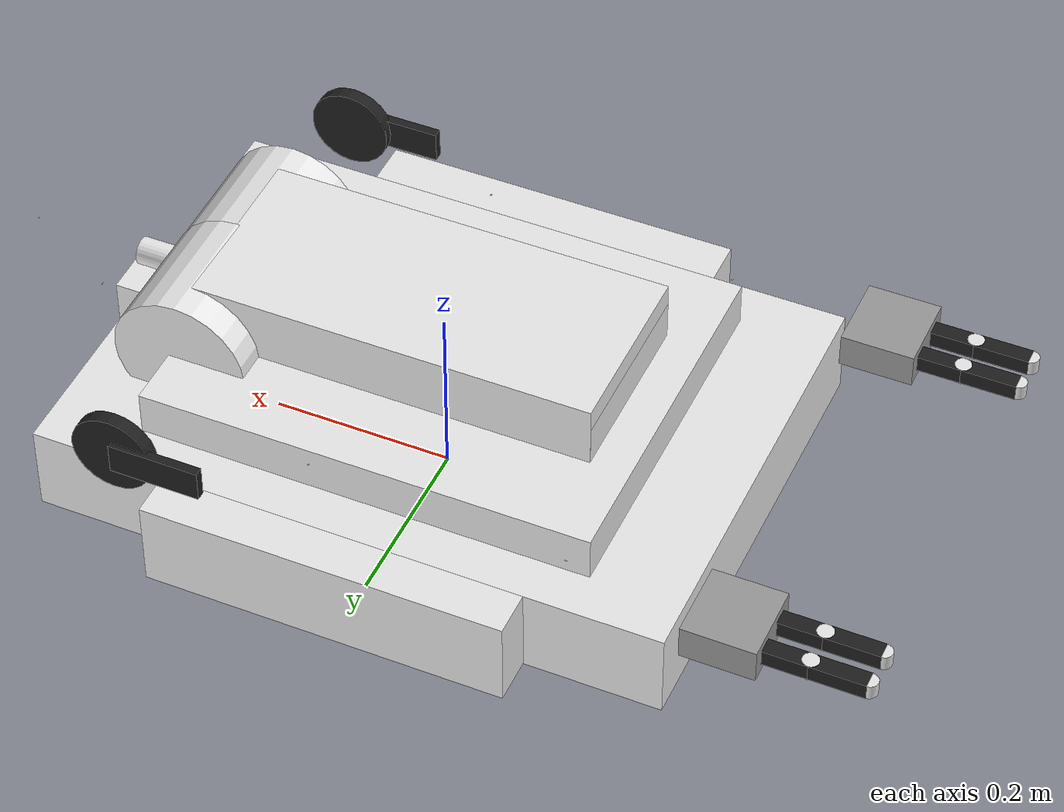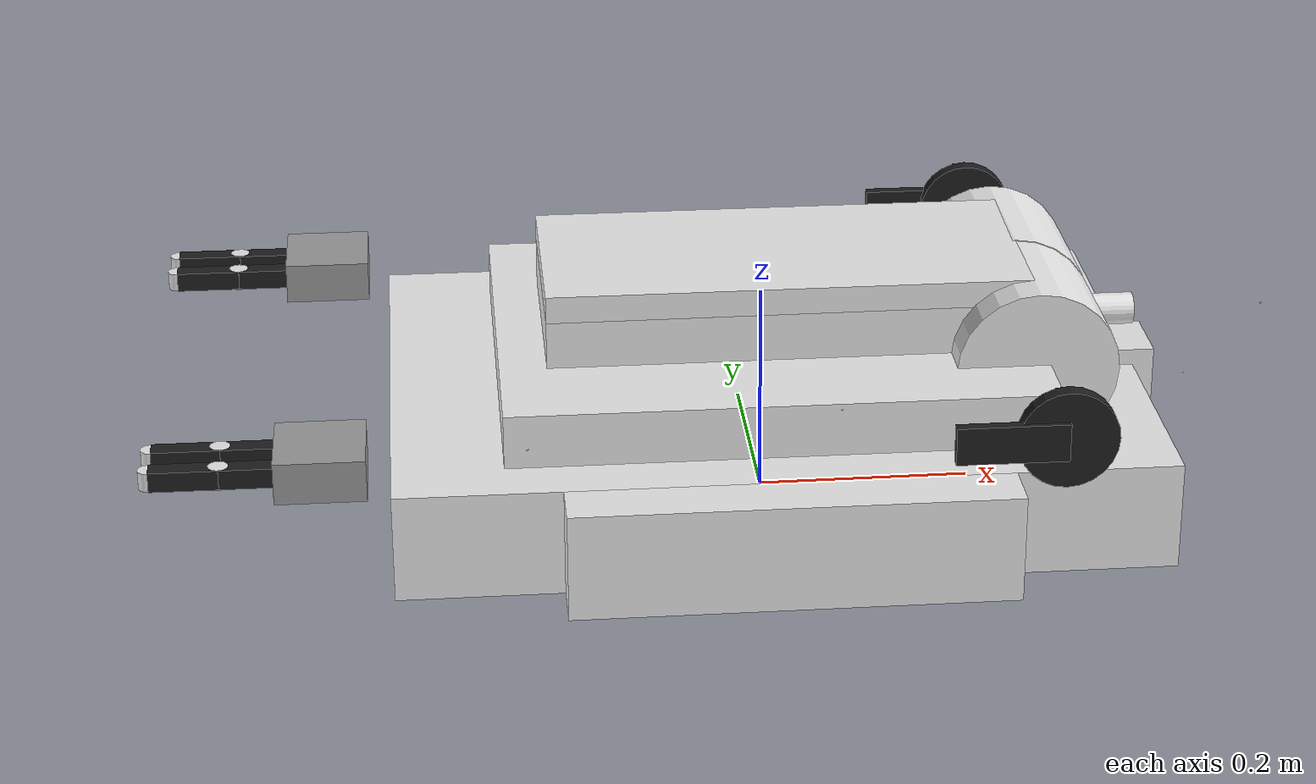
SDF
<sdf version="1.4">
 <model name="amigo">
  <link name="base_link">
   <inertial>
    <pose>0.196154 3.81258e-18 0.0496154 0 -0 0</pose>
    <mass>0.91</mass>
    <inertia>
     <ixx>0.0211371</ixx>
     <ixy>6.80545e-19</ixy>
     <ixz>0.00617885</ixz>
     <iyy>0.0334737</iyy>
     <iyz>-8.80706e-20</iyz>
     <izz>0.0467865</izz>
    </inertia>
   </inertial>
   <collision name="base_link_collision">
    <geometry><cylinder><length>0</length><radius>0</radius></cylinder></geometry>
   </collision>
   <collision name="base_link_collision_base">
    <pose>0 0 0.075 0 -0 0</pose>
    <geometry><box><size>0.7 0.5 0.1</size></box></geometry>
   </collision>
   <collision name="base_link_collision_base_laser">
    <pose>0.345 0.000103522 0.0799999 3.14 -0 0</pose>
    <geometry><box><size>0.05 0.065 0.12</size></box></geometry>
   </collision>
   <collision name="base_link_collision_base_torso_mount">
    <pose>0 0 0.125 0 -0 0</pose>
    <geometry><cylinder><length>0</length><radius>0</radius></cylinder></geometry>
   </collision>
   <collision name="base_link_collision_lasertop">
    <pose>0.345 0 0.015 3.14 -0 0</pose>
    <geometry><box><size>0.05 0.065 0.01</size></box></geometry>
   </collision>
   <collision name="base_link_collision_sidepot_left">
    <pose>0 0.275 0.075 0 -0 0</pose>
    <geometry><box><size>0.4 0.05 0.1</size></box></geometry>
   </collision>
   <collision name="base_link_collision_sidepot_right">
    <pose>0 -0.275 0.075 0 -0 0</pose>
    <geometry><box><size>0.4 0.05 0.1</size></box></geometry>
   </collision>
   <collision name="base_link_collision_torso_mounting_frame">
    <pose>0 0 0.15 0 -0 0</pose>
    <geometry><box><size>0.5 0.4 0.05</size></box></geometry>
   </collision>
   <visual name="base_link_visual">
    <geometry><cylinder><length>0</length><radius>0</radius></cylinder></geometry>
    <material><script><name>Gazebo/White</name><uri>__default__</uri></script></material>
    <material><script><name>Gazebo/White</name><uri>__default__</uri></script></material>
   </visual>
   <visual name="base_link_visual_base">
    <pose>0 0 0.075 0 -0 0</pose>
    <geometry><box><size>0.7 0.5 0.1</size></box></geometry>
    <material><script><name>Gazebo/White</name><uri>__default__</uri></script></material>
   </visual>
   <visual name="base_link_visual_base_laser">
    <pose>0.345 0.000103522 0.0799999 3.14 -0 0</pose>
    <geometry><box><size>0.05 0.065 0.12</size></box></geometry>
    <material><script><name>Gazebo/White</name><uri>__default__</uri></script></material>
    <material><script><name>Gazebo/Black</name><uri>__default__</uri></script></material>
   </visual>
   <visual name="base_link_visual_base_torso_mount">
    <pose>0 0 0.125 0 -0 0</pose>
    <geometry><cylinder><length>0</length><radius>0</radius></cylinder></geometry>
    <material><script><name>Gazebo/White</name><uri>__default__</uri></script></material>
    <material><script><name>Gazebo/White</name><uri>__default__</uri></script></material>
   </visual>
   <visual name="base_link_visual_lasertop">
    <pose>0.345 0 0.015 3.14 -0 0</pose>
    <geometry><box><size>0.05 0.065 0.01</size></box></geometry>
    <material><script><name>Gazebo/Red</name><uri>__default__</uri></script></material>
   </visual>
   <visual name="base_link_visual_sidepot_left">
    <pose>0 0.275 0.075 0 -0 0</pose>
    <geometry><box><size>0.4 0.05 0.1</size></box></geometry>
    <material><script><name>Gazebo/White</name><uri>__default__</uri></script></material>
   </visual>
   <visual name="base_link_visual_sidepot_right">
    <pose>0 -0.275 0.075 0 -0 0</pose>
    <geometry><box><size>0.4 0.05 0.1</size></box></geometry>
    <material><script><name>Gazebo/White</name><uri>__default__</uri></script></material>
   </visual>
   <visual name="base_link_visual_torso_mounting_frame">
    <pose>0 0 0.15 0 -0 0</pose>
    <geometry><box><size>0.5 0.4 0.05</size></box></geometry>
    <material><script><name>Gazebo/White</name><uri>__default__</uri></script></material>
   </visual>
   <velocity_decay><linear>0</linear><angular>0</angular></velocity_decay>
   <velocity_decay><linear>0</linear><angular>0</angular></velocity_decay>
   <sensor name="base_kinect_openni_camera" type="depth">
    <update_rate>20</update_rate>
    <camera name="base_kinect">
     <horizontal_fov>1.0472</horizontal_fov>
     <image><width>640</width><height>480</height><format>R8G8B8</format></image>
     <clip><near>0.05</near><far>3</far></clip>
    </camera>
    <plugin name="base_kinect_camera_controller" filename="libKinectPlugin.so">
     <alwaysOn>1</alwaysOn>
     <updateRate>20</updateRate>
     <cameraName>base_kinect</cameraName>
     <imageTopicName>rgb/image_color</imageTopicName>
     <cameraInfoTopicName>rgb/camera_info</cameraInfoTopicName>
     <depthImageTopicName>depth/image</depthImageTopicName>
     <depthImageCameraInfoTopicName>depth/camera_info</depthImageCameraInfoTopicName>
     <pointCloudTopicName>rgb/points</pointCloudTopicName>
     <frameName>base_kinect/openni_depth_optical_frame</frameName>
    </plugin>
    <pose>0.3 0 0.315 0 -0.07 0</pose>
   </sensor>
   <sensor name="base_ray_sensor" type="ray">
    <update_rate>100</update_rate>
    <ray>
     <scan>
      <horizontal>
       <samples>918</samples>
       <resolution>1</resolution>
       <min_angle>-2.00277</min_angle>
       <max_angle>1.9984</max_angle>
      </horizontal>
      <vertical><samples>1</samples><min_angle>0</min_angle><max_angle>0</max_angle></vertical>
     </scan>
     <range><min>0.05</min><max>60</max><resolution>0.01</resolution></range>
    </ray>
    <plugin name="base_ros_ray_sensor_controller" filename="libLaserPlugin.so">
     <gaussianNoise>0.005</gaussianNoise>
     <alwaysOn>1</alwaysOn>
     <updateRate>40</updateRate>
     <topicName>base_front_laser</topicName>
     <node_namespace>base</node_namespace>
     <frameName>base_laser</frameName>
    </plugin>
    <pose>0.31 0 0.24 3.14 -0 0</pose>
   </sensor>
   <velocity_decay><linear>0</linear><angular>0</angular></velocity_decay>
   <velocity_decay><linear>0</linear><angular>0</angular></velocity_decay>
   <velocity_decay><linear>0</linear><angular>0</angular></velocity_decay>
   <velocity_decay><linear>0</linear><angular>0</angular></velocity_decay>
   <velocity_decay><linear>0</linear><angular>0</angular></velocity_decay>
   <velocity_decay><linear>0</linear><angular>0</angular></velocity_decay>
   <velocity_decay><linear>0</linear><angular>0</angular></velocity_decay>
  </link>
  <link name="lower_rear_leg">
   <pose>-0.185 0 0.17 0 -0 0</pose>
   <inertial>
    <pose>0.195 0 0 0 -0 0</pose>
    <mass>5</mass>
    <inertia><ixx>0.001</ixx><ixy>0</ixy><ixz>0</ixz><iyy>0.001</iyy><iyz>0</iyz><izz>0.001</izz></inertia>
   </inertial>
   <collision name="lower_rear_leg_collision">
    <pose>0.195 0 0 0 -0 0</pose>
    <geometry><box><size>0.39 0.2 0.05</size></box></geometry>
   </collision>
   <visual name="lower_rear_leg_visual">
    <pose>0.195 0 0 0 -0 0</pose>
    <geometry><box><size>0.39 0.2 0.05</size></box></geometry>
    <material><script><name>Gazebo/White</name><uri>__default__</uri></script></material>
   </visual>
   <velocity_decay><linear>0</linear><angular>0</angular></velocity_decay>
  </link>
  <joint name="ankle_joint" type="revolute">
   <child>lower_rear_leg</child>
   <parent>base_link</parent>
   <axis>
    <xyz>0 -1 0</xyz>
    <limit><lower>0.87</lower><upper>0.87</upper><effort>1000</effort><velocity>10</velocity></limit>
    <dynamics><damping>6</damping></dynamics>
   </axis>
  </joint>
  <link name="upper_leg">
   <pose>0.205 0 0.17 -0.00159265 0.00159265 3.14159</pose>
   <inertial>
    <pose>0.20575 0 0 0 -0 0</pose>
    <mass>5</mass>
    <inertia><ixx>0.001</ixx><ixy>0</ixy><ixz>0</ixz><iyy>0.001</iyy><iyz>0</iyz><izz>0.001</izz></inertia>
   </inertial>
   <collision name="upper_leg_collision">
    <pose>0.20575 0 0 0 -0 0</pose>
    <geometry><box><size>0.4115 0.2 0.1</size></box></geometry>
   </collision>
   <visual name="upper_leg_visual">
    <pose>0.20575 0 0 0 -0 0</pose>
    <geometry><box><size>0.4115 0.2 0.1</size></box></geometry>
    <material><script><name>Gazebo/White</name><uri>__default__</uri></script></material>
   </visual>
   <velocity_decay><linear>0</linear><angular>0</angular></velocity_decay>
  </link>
  <joint name="knee_joint" type="revolute">
   <child>upper_leg</child>
   <parent>lower_rear_leg</parent>
   <axis>
    <xyz>-2.53654e-06 0.999999 0.00159265</xyz>
    <limit><lower>2</lower><upper>2</upper><effort>1000</effort><velocity>10</velocity></limit>
    <dynamics><damping>6</damping></dynamics>
   </axis>
  </joint>
  <link name="trunk">
   <pose>-0.206499 -5.29396e-23 0.169345 -2.01992e-09 -2.01992e-09 2.53654e-06</pose>
   <inertial>
    <pose>0.229007 0 0 0 -0 0</pose>
    <mass>10.301</mass>
    <inertia>
     <ixx>0.0223675</ixx>
     <ixy>0</ixy>
     <ixz>0</ixz>
     <iyy>0.0355928</iyy>
     <iyz>-4.81381e-06</iyz>
     <izz>0.0368602</izz>
    </inertia>
   </inertial>
   <collision name="trunk_collision">
    <pose>0.2225 0 0 0 -0 0</pose>
    <geometry><box><size>0.445 0.2 0.15</size></box></geometry>
   </collision>
   <collision name="trunk_collision_shoulder_mount_left">
    <pose>0.445 0.0650002 0.000246861 -1.57319 -0 0</pose>
    <geometry><cylinder><length>0.14</length><radius>0.075</radius></cylinder></geometry>
   </collision>
   <collision name="trunk_collision_shoulder_mount_right">
    <pose>0.445 -0.0650002 -0.000246861 -1.57319 -0 0</pose>
    <geometry><cylinder><length>0.14</length><radius>0.075</radius></cylinder></geometry>
   </collision>
   <visual name="trunk_visual">
    <pose>0.2225 0 0 0 -0 0</pose>
    <geometry><box><size>0.445 0.2 0.15</size></box></geometry>
    <material><script><name>Gazebo/White</name><uri>__default__</uri></script></material>
   </visual>
   <visual name="trunk_visual_shoulder_mount_left">
    <pose>0.445 0.0650002 0.000246861 -1.57319 -0 0</pose>
    <geometry><cylinder><length>0.14</length><radius>0.075</radius></cylinder></geometry>
    <material><script><name>Gazebo/White</name><uri>__default__</uri></script></material>
   </visual>
   <visual name="trunk_visual_shoulder_mount_right">
    <pose>0.445 -0.0650002 -0.000246861 -1.57319 -0 0</pose>
    <geometry><cylinder><length>0.14</length><radius>0.075</radius></cylinder></geometry>
    <material><script><name>Gazebo/White</name><uri>__default__</uri></script></material>
   </visual>
   <velocity_decay><linear>0</linear><angular>0</angular></velocity_decay>
   <velocity_decay><linear>0</linear><angular>0</angular></velocity_decay>
   <velocity_decay><linear>0</linear><angular>0</angular></velocity_decay>
  </link>
  <joint name="hip_joint" type="revolute">
   <child>trunk</child>
   <parent>upper_leg</parent>
   <axis>
    <xyz>2.53654e-06 -1 2.01992e-09</xyz>
    <limit><lower>2.36</lower><upper>2.36</upper><effort>1000</effort><velocity>10</velocity></limit>
    <dynamics><damping>6</damping></dynamics>
   </axis>
  </joint>
  <link name="neck_pan">
   <pose>0.293501 1.26827e-06 0.169345 -1.57469 1.5692 -1.5731</pose>
   <inertial>
    <pose>0 0 0.0335 0 -0 0</pose>
    <mass>0.05</mass>
    <inertia><ixx>0.0001</ixx><ixy>0</ixy><ixz>0</ixz><iyy>0.0001</iyy><iyz>0</iyz><izz>0.0001</izz></inertia>
   </inertial>
   <collision name="neck_pan_collision">
    <pose>0 0 0.0335 0 -0 0</pose>
    <geometry><cylinder><length>0.0525</length><radius>0.015</radius></cylinder></geometry>
   </collision>
   <visual name="neck_pan_visual">
    <pose>0 0 0.0335 0 -0 0</pose>
    <geometry><cylinder><length>0.0525</length><radius>0.015</radius></cylinder></geometry>
    <material><script><name>Gazebo/White</name><uri>__default__</uri></script></material>
   </visual>
   <velocity_decay><linear>0</linear><angular>0</angular></velocity_decay>
  </link>
  <joint name="neck_pan_joint" type="revolute">
   <child>neck_pan</child>
   <parent>trunk</parent>
   <axis>
    <xyz>0.999999 0.00159518 -6.20772e-06</xyz>
    <limit><lower>-1.5708</lower><upper>1.5708</upper><effort>13.4</effort><velocity>1</velocity></limit>
    <dynamics><damping>0.1</damping></dynamics>
   </axis>
  </joint>
  <link name="neck_tilt">
   <pose>0.338 7.22539e-05 0.169344 -1.57469 1.5692 -1.5731</pose>
   <inertial>
    <pose>0.0220548 0.00257534 0.0415753 0 -0 0</pose>
    <mass>0.073</mass>
    <inertia>
     <ixx>0.00333026</ixx>
     <ixy>-9.0137e-06</ixy>
     <ixz>-4.57637e-05</ixz>
     <iyy>0.00340432</iyy>
     <iyz>-5.34384e-06</iyz>
     <izz>0.00338032</izz>
    </inertia>
   </inertial>
   <collision name="neck_tilt_collision">
    <pose>0 -0 0.015 0 -0 0</pose>
    <geometry><box><size>0.001 0.001 0.001</size></box></geometry>
   </collision>
   <collision name="neck_tilt_collision_head">
    <pose>0 0 0.141 0 0 -1.5708</pose>
    <geometry><box><size>0.001 0.001 0.001</size></box></geometry>
   </collision>
   <visual name="neck_tilt_visual">
    <pose>0 -0 0.015 0 -0 0</pose>
    <geometry><box><size>0.001 0.001 0.001</size></box></geometry>
    <material><script><name>Gazebo/White</name><uri>__default__</uri></script></material>
   </visual>
   <visual name="neck_tilt_visual_head">
    <pose>0 0 0.141 0 0 -1.5708</pose>
    <geometry><box><size>0.001 0.001 0.001</size></box></geometry>
    <material><script><name>Gazebo/White</name><uri>__default__</uri></script></material>
   </visual>
   <visual name="neck_tilt_visual_top_kinect/openni_camera">
    <pose>0.07 0 0.07 0 -0 0</pose>
    <geometry><mesh><scale>1 1 1</scale><uri>model://media/meshes/kinect_without_base.dae</uri></mesh></geometry>
   </visual>
   <velocity_decay><linear>0</linear><angular>0</angular></velocity_decay>
   <velocity_decay><linear>0</linear><angular>0</angular></velocity_decay>
   <sensor name="openni_camera" type="depth">
    <update_rate>20</update_rate>
    <camera name="top_kinect">
     <horizontal_fov>1.0472</horizontal_fov>
     <image><width>640</width><height>480</height><format>R8G8B8</format></image>
     <clip><near>0.05</near><far>3</far></clip>
    </camera>
    <plugin name="kinect_camera_controller" filename="libKinectPlugin.so">
     <alwaysOn>1</alwaysOn>
     <updateRate>20</updateRate>
     <cameraName>top_kinect</cameraName>
     <imageTopicName>rgb/image_color</imageTopicName>
     <cameraInfoTopicName>rgb/camera_info</cameraInfoTopicName>
     <depthImageTopicName>depth/image</depthImageTopicName>
     <depthImageCameraInfoTopicName>depth/camera_info</depthImageCameraInfoTopicName>
     <pointCloudTopicName>rgb/points</pointCloudTopicName>
     <frameName>top_kinect/openni_depth_optical_frame</frameName>
    </plugin>
    <pose>0.07 0 0.07 0 -0 0</pose>
   </sensor>
   <velocity_decay><linear>0</linear><angular>0</angular></velocity_decay>
  </link>
  <joint name="neck_tilt_joint" type="revolute">
   <child>neck_tilt</child>
   <parent>neck_pan</parent>
   <axis>
    <xyz>-0.00159519 0.999997 -0.00159265</xyz>
    <limit><lower>-2</lower><upper>2</upper><effort>13.4</effort><velocity>1</velocity></limit>
    <dynamics><damping>0.1</damping></dynamics>
   </axis>
  </joint>
  <link name="shoulder_link1_left">
   <pose>0.2385 0.220001 0.169345 -0.00230874 1.5692 -1.5731</pose>
   <inertial>
    <mass>0.25</mass>
    <inertia><ixx>6</ixx><ixy>0</ixy><ixz>0</ixz><iyy>0.01</iyy><iyz>0</iyz><izz>0.01</izz></inertia>
   </inertial>
   <collision name="shoulder_link1_left_collision">
    <pose>0 0 -0.0525 0 -0 0</pose>
    <geometry><cylinder><length>0.015</length><radius>0.045</radius></cylinder></geometry>
   </collision>
   <visual name="shoulder_link1_left_visual">
    <pose>0 0 -0.0525 0 -0 0</pose>
    <geometry><cylinder><length>0.015</length><radius>0.045</radius></cylinder></geometry>
    <material><script><name>Gazebo/Black</name><uri>__default__</uri></script></material>
   </visual>
   <velocity_decay><linear>0</linear><angular>0</angular></velocity_decay>
  </link>
  <joint name="shoulder_yaw_joint_left" type="revolute">
   <child>shoulder_link1_left</child>
   <parent>trunk</parent>
   <axis>
    <xyz>3.66715e-06 0.00159265 0.999999</xyz>
    <limit><lower>-1.57</lower><upper>0</upper><effort>13.4</effort><velocity>1</velocity></limit>
    <dynamics><damping>4</damping></dynamics>
   </axis>
  </joint>
  <link name="shoulder_link2_left">
   <pose>0.2385 0.220001 0.169345 -1.57311 1.5692 -1.5731</pose>
   <inertial>
    <mass>0.15</mass>
    <inertia><ixx>0.01</ixx><ixy>0</ixy><ixz>0</ixz><iyy>4.04</iyy><iyz>0</iyz><izz>0.001</izz></inertia>
   </inertial>
   <collision name="shoulder_link2_left_collision">
    <pose>0 0.06 -0.05 0 -0 0</pose>
    <geometry><box><size>0.035 0.01 0.1</size></box></geometry>
   </collision>
   <visual name="shoulder_link2_left_visual">
    <pose>0 0.06 -0.05 0 -0 0</pose>
    <geometry><box><size>0.035 0.01 0.1</size></box></geometry>
    <material><script><name>Gazebo/Black</name><uri>__default__</uri></script></material>
   </visual>
   <velocity_decay><linear>0</linear><angular>0</angular></velocity_decay>
  </link>
  <joint name="shoulder_pitch_joint_left" type="revolute">
   <child>shoulder_link2_left</child>
   <parent>shoulder_link1_left</parent>
   <axis>
    <xyz>9.88295e-06 -0.999999 0.00159265</xyz>
    <limit><lower>-1.57</lower><upper>1.57</upper><effort>13.4</effort><velocity>1</velocity></limit>
    <dynamics><damping>4</damping></dynamics>
   </axis>
  </joint>
  <link name="upper_arm_left">
   <pose>0.2385 0.220001 0.169345 -0.00230874 1.5692 -1.5731</pose>
   <inertial>
    <pose>0 -0.2 0 0 -0 0</pose>
    <mass>2.95</mass>
    <inertia><ixx>0.027</ixx><ixy>0</ixy><ixz>0</ixz><iyy>0.45993</iyy><iyz>0</iyz><izz>0.004</izz></inertia>
   </inertial>
   <collision name="upper_arm_left_collision">
    <pose>-0.00959 -0.19131 -1e-05 0 -0 3.1415</pose>
    <geometry>
     <mesh><scale>0.0004 0.0004 0.0004</scale><uri>model://media/meshes/upperarmtextured.dae</uri></mesh>
    </geometry>
   </collision>
   <visual name="upper_arm_left_visual">
    <pose>-0.00959 -0.19131 -1e-05 0 -0 3.1415</pose>
    <geometry>
     <mesh><scale>0.0004 0.0004 0.0004</scale><uri>model://media/meshes/upperarmtextured.dae</uri></mesh>
    </geometry>
    <material><script><name>amigo_description/white</name><uri>__default__</uri></script></material>
   </visual>
   <velocity_decay><linear>0</linear><angular>0</angular></velocity_decay>
  </link>
  <joint name="shoulder_roll_joint_left" type="revolute">
   <child>upper_arm_left</child>
   <parent>shoulder_link2_left</parent>
   <axis>
    <xyz>-1 -6.20389e-06 3.67703e-06</xyz>
    <limit><lower>-1.57</lower><upper>1.57</upper><effort>9.8</effort><velocity>1</velocity></limit>
    <dynamics><damping>3.8</damping></dynamics>
   </axis>
  </joint>
  <link name="elbow_link4_left">
   <pose>-0.0815001 0.219983 0.159346 -1.57311 1.5692 -1.5731</pose>
   <inertial>
    <mass>0.1</mass>
    <inertia><ixx>0.001</ixx><ixy>0</ixy><ixz>0</ixz><iyy>0.6</iyy><iyz>0</iyz><izz>0.001</izz></inertia>
   </inertial>
   <collision name="elbow_link4_left_collision">
    <geometry><cylinder><length>0</length><radius>0</radius></cylinder></geometry>
   </collision>
   <visual name="elbow_link4_left_visual">
    <geometry><cylinder><length>0</length><radius>0</radius></cylinder></geometry>
    <material><script><name>Gazebo/Grey</name><uri>__default__</uri></script></material>
   </visual>
   <velocity_decay><linear>0</linear><angular>0</angular></velocity_decay>
  </link>
  <joint name="elbow_pitch_joint_left" type="revolute">
   <child>elbow_link4_left</child>
   <parent>upper_arm_left</parent>
   <axis>
    <xyz>9.88295e-06 -0.999999 0.00159265</xyz>
    <limit><lower>0</lower><upper>2.23</upper><effort>4.5</effort><velocity>1</velocity></limit>
    <dynamics><damping>3</damping></dynamics>
   </axis>
  </joint>
  <link name="fore_arm_left">
   <pose>-0.0815001 0.219983 0.159346 -0.00230874 1.5692 -1.5731</pose>
   <inertial>
    <pose>0 -0.14 0 0 -0 0</pose>
    <mass>0.85</mass>
    <inertia><ixx>0.001</ixx><ixy>0</ixy><ixz>0</ixz><iyy>0.5</iyy><iyz>0</iyz><izz>0.001</izz></inertia>
   </inertial>
   <collision name="fore_arm_left_collision">
    <pose>0.00425 -0.14868 0.00547 3.14159 -1.57079 3.14159</pose>
    <geometry>
     <mesh><scale>0.0004 0.0004 0.0004</scale><uri>model://media/meshes/forearmtextured.dae</uri></mesh>
    </geometry>
   </collision>
   <visual name="fore_arm_left_visual">
    <pose>0.00425 -0.14868 0.00547 3.14159 -1.57079 3.14159</pose>
    <geometry>
     <mesh><scale>0.0004 0.0004 0.0004</scale><uri>model://media/meshes/forearmtextured.dae</uri></mesh>
    </geometry>
    <material><script><name>amigo_description/white</name><uri>__default__</uri></script></material>
   </visual>
   <velocity_decay><linear>0</linear><angular>0</angular></velocity_decay>
  </link>
  <joint name="elbow_roll_joint_left" type="revolute">
   <child>fore_arm_left</child>
   <parent>elbow_link4_left</parent>
   <axis>
    <xyz>-1 -6.20389e-06 3.67703e-06</xyz>
    <limit><lower>-1.83</lower><upper>1.83</upper><effort>4.5</effort><velocity>1</velocity></limit>
    <dynamics><damping>3.5</damping></dynamics>
   </axis>
  </joint>
  <link name="wrist_link6_left">
   <pose>-0.3615 0.219966 0.149347 -3.14 -7.35023e-06 -3.14159</pose>
   <inertial>
    <mass>0.01</mass>
    <inertia><ixx>0.001</ixx><ixy>0</ixy><ixz>0</ixz><iyy>0.03322</iyy><iyz>0</iyz><izz>0.001</izz></inertia>
   </inertial>
   <collision name="wrist_link6_left_collision">
    <pose>0 0 0 1.5708 -0 0</pose>
    <geometry><cylinder><length>0</length><radius>0</radius></cylinder></geometry>
   </collision>
   <visual name="wrist_link6_left_visual">
    <pose>0 0 0 1.5708 -0 0</pose>
    <geometry><cylinder><length>0</length><radius>0</radius></cylinder></geometry>
    <material><script><name>Gazebo/Black</name><uri>__default__</uri></script></material>
   </visual>
   <velocity_decay><linear>0</linear><angular>0</angular></velocity_decay>
  </link>
  <joint name="wrist_pitch_joint_left" type="revolute">
   <child>wrist_link6_left</child>
   <parent>fore_arm_left</parent>
   <axis>
    <xyz>6.20972e-06 -0.999999 0.00158898</xyz>
    <limit><lower>-0.95</lower><upper>0.95</upper><effort>1</effort><velocity>1</velocity></limit>
    <dynamics><damping>0.35</damping></dynamics>
   </axis>
  </joint>
  <link name="hand_left">
   <pose>-0.3615 0.219966 0.149347 -3.14 -7.35023e-06 -3.14159</pose>
   <inertial>
    <pose>0.047619 0 0 0 -0 0</pose>
    <mass>0.21</mass>
    <inertia>
     <ixx>0.0101</ixx>
     <ixy>0</ixy>
     <ixz>0</ixz>
     <iyy>0.0101006</iyy>
     <iyz>0</iyz>
     <izz>0.0623006</izz>
    </inertia>
   </inertial>
   <collision name="hand_left_collision">
    <pose>0.048 0 0 0 -0 0</pose>
    <geometry><box><size>0.08 0.085 0.038</size></box></geometry>
   </collision>
   <collision name="hand_left_collision_grippoint_left">
    <pose>0.04 0 0 0 -0 0</pose>
    <geometry><box><size>0 0 0</size></box></geometry>
   </collision>
   <visual name="hand_left_visual">
    <pose>0.048 0 0 0 -0 0</pose>
    <geometry><box><size>0.08 0.085 0.038</size></box></geometry>
    <material><script><name>Gazebo/Grey</name><uri>__default__</uri></script></material>
   </visual>
   <visual name="hand_left_visual_grippoint_left">
    <pose>0.04 0 0 0 -0 0</pose>
    <geometry><box><size>0 0 0</size></box></geometry>
    <material><script><name>Gazebo/Blue</name><uri>__default__</uri></script></material>
   </visual>
   <velocity_decay><linear>0</linear><angular>0</angular></velocity_decay>
   <velocity_decay><linear>0</linear><angular>0</angular></velocity_decay>
  </link>
  <joint name="wrist_yaw_joint_left" type="revolute">
   <child>hand_left</child>
   <parent>wrist_link6_left</parent>
   <axis>
    <xyz>7.41378e-06 0.00160487 1.01</xyz>
    <limit><lower>-0.61</lower><upper>0.61</upper><effort>1</effort><velocity>1</velocity></limit>
    <dynamics><damping>0.3</damping></dynamics>
   </axis>
  </joint>
  <link name="finger1_left">
   <pose>-0.4365 0.239965 0.149316 -2.03906 1.56902 -2.03905</pose>
   <inertial>
    <pose>0 0 -0.045 0 -0 0</pose>
    <mass>0.02</mass>
    <inertia>
     <ixx>0.0110045</ixx>
     <ixy>0</ixy>
     <ixz>1.05879e-22</ixz>
     <iyy>0.0110045</iyy>
     <iyz>0</iyz>
     <izz>0.011</izz>
    </inertia>
   </inertial>
   <collision name="finger1_left_collision">
    <pose>0 0 -0.03 0 -0 0</pose>
    <geometry><box><size>0.018 0.018 0.06</size></box></geometry>
    <surface><friction><ode><mu>100</mu><mu2>100</mu2></ode></friction></surface>
   </collision>
   <collision name="finger1_left_collision_finger1_phalanx_left">
    <pose>0 0 -0.06 0 1.57 0</pose>
    <geometry><cylinder><length>0.019</length><radius>0.009</radius></cylinder></geometry>
    <surface><friction><ode><mu>100</mu><mu2>100</mu2></ode></friction></surface>
   </collision>
   <visual name="finger1_left_visual">
    <pose>0 0 -0.03 0 -0 0</pose>
    <geometry><box><size>0.018 0.018 0.06</size></box></geometry>
    <material><script><name>Gazebo/Black</name><uri>__default__</uri></script></material>
   </visual>
   <visual name="finger1_left_visual_finger1_phalanx_left">
    <pose>0 0 -0.06 0 1.57 0</pose>
    <geometry><cylinder><length>0.019</length><radius>0.009</radius></cylinder></geometry>
    <material><script><name>Gazebo/White</name><uri>__default__</uri></script></material>
   </visual>
   <velocity_decay><linear>0</linear><angular>0</angular></velocity_decay>
   <velocity_decay><linear>0</linear><angular>0</angular></velocity_decay>
   <velocity_decay><linear>0</linear><angular>0</angular></velocity_decay>
  </link>
  <joint name="finger1_joint_left" type="revolute">
   <child>finger1_left</child>
   <parent>hand_left</parent>
   <axis>
    <xyz>-0.000803667 -0.00158899 -0.999998</xyz>
    <limit><lower>-1.57</lower><upper>1.57</upper><effort>3</effort><velocity>1</velocity></limit>
    <dynamics><damping>0.5</damping></dynamics>
   </axis>
  </joint>
  <link name="finger1_tip_left">
   <pose>-0.4965 0.239965 0.149364 -2.03906 1.56902 -2.03905</pose>
   <inertial>
    <pose>0 0 -0.045 0 -0 0</pose>
    <mass>0.02</mass>
    <inertia>
     <ixx>0.0013745</ixx>
     <ixy>0</ixy>
     <ixz>1.05879e-22</ixz>
     <iyy>0.0015245</iyy>
     <iyz>0</iyz>
     <izz>0.00152</izz>
    </inertia>
   </inertial>
   <collision name="finger1_tip_left_collision">
    <pose>0 0 -0.03 0 -0 0</pose>
    <geometry><box><size>0.018 0.018 0.06</size></box></geometry>
    <surface><friction><ode><mu>100</mu><mu2>100</mu2></ode></friction></surface>
   </collision>
   <collision name="finger1_tip_left_collision_finger1_tip_phalanx_left">
    <pose>0 0 -0.06 0 1.57 0</pose>
    <geometry><cylinder><length>0.017</length><radius>0.009</radius></cylinder></geometry>
    <surface><friction><ode><mu>100</mu><mu2>100</mu2></ode></friction></surface>
   </collision>
   <visual name="finger1_tip_left_visual">
    <pose>0 0 -0.03 0 -0 0</pose>
    <geometry><box><size>0.018 0.018 0.06</size></box></geometry>
    <material><script><name>Gazebo/Black</name><uri>__default__</uri></script></material>
   </visual>
   <visual name="finger1_tip_left_visual_finger1_tip_phalanx_left">
    <pose>0 0 -0.06 0 1.57 0</pose>
    <geometry><cylinder><length>0.017</length><radius>0.009</radius></cylinder></geometry>
    <material><script><name>Gazebo/White</name><uri>__default__</uri></script></material>
   </visual>
   <velocity_decay><linear>0</linear><angular>0</angular></velocity_decay>
   <velocity_decay><linear>0</linear><angular>0</angular></velocity_decay>
   <velocity_decay><linear>0</linear><angular>0</angular></velocity_decay>
  </link>
  <joint name="finger1_tip_joint_left" type="revolute">
   <child>finger1_tip_left</child>
   <parent>finger1_left</parent>
   <axis>
    <xyz>-0.000803667 -0.00158899 -0.999998</xyz>
    <limit><lower>-1.57</lower><upper>1.57</upper><effort>3</effort><velocity>1</velocity></limit>
    <dynamics><damping>0.5</damping></dynamics>
   </axis>
  </joint>
  <link name="finger2_left">
   <pose>-0.4365 0.199965 0.149379 -2.03906 1.56902 -2.03905</pose>
   <inertial>
    <pose>0 0 -0.045 0 -0 0</pose>
    <mass>0.02</mass>
    <inertia>
     <ixx>0.0110045</ixx>
     <ixy>0</ixy>
     <ixz>1.05879e-22</ixz>
     <iyy>0.0110045</iyy>
     <iyz>0</iyz>
     <izz>0.011</izz>
    </inertia>
   </inertial>
   <collision name="finger2_left_collision">
    <pose>0 0 -0.03 0 -0 0</pose>
    <geometry><box><size>0.018 0.018 0.06</size></box></geometry>
    <surface><friction><ode><mu>100</mu><mu2>100</mu2></ode></friction></surface>
   </collision>
   <collision name="finger2_left_collision_finger2_phalanx_left">
    <pose>0 0 -0.06 0 1.57 0</pose>
    <geometry><cylinder><length>0.019</length><radius>0.009</radius></cylinder></geometry>
    <surface><friction><ode><mu>100</mu><mu2>100</mu2></ode></friction></surface>
   </collision>
   <visual name="finger2_left_visual">
    <pose>0 0 -0.03 0 -0 0</pose>
    <geometry><box><size>0.018 0.018 0.06</size></box></geometry>
    <material><script><name>Gazebo/Black</name><uri>__default__</uri></script></material>
   </visual>
   <visual name="finger2_left_visual_finger2_phalanx_left">
    <pose>0 0 -0.06 0 1.57 0</pose>
    <geometry><cylinder><length>0.019</length><radius>0.009</radius></cylinder></geometry>
    <material><script><name>Gazebo/White</name><uri>__default__</uri></script></material>
   </visual>
   <velocity_decay><linear>0</linear><angular>0</angular></velocity_decay>
   <velocity_decay><linear>0</linear><angular>0</angular></velocity_decay>
   <velocity_decay><linear>0</linear><angular>0</angular></velocity_decay>
  </link>
  <joint name="finger2_joint_left" type="revolute">
   <child>finger2_left</child>
   <parent>hand_left</parent>
   <axis>
    <xyz>0.000803667 0.00158899 0.999998</xyz>
    <limit><lower>-1.57</lower><upper>1.57</upper><effort>3</effort><velocity>1</velocity></limit>
    <dynamics><damping>0.5</damping></dynamics>
   </axis>
  </joint>
  <link name="finger2_tip_left">
   <pose>-0.4965 0.199965 0.149427 -2.03906 1.56902 -2.03905</pose>
   <inertial>
    <pose>0 0 -0.045 0 -0 0</pose>
    <mass>0.02</mass>
    <inertia>
     <ixx>0.0013745</ixx>
     <ixy>0</ixy>
     <ixz>1.05879e-22</ixz>
     <iyy>0.0015245</iyy>
     <iyz>0</iyz>
     <izz>0.00152</izz>
    </inertia>
   </inertial>
   <collision name="finger2_tip_left_collision">
    <pose>0 0 -0.03 0 -0 0</pose>
    <geometry><box><size>0.018 0.018 0.06</size></box></geometry>
    <surface><friction><ode><mu>100</mu><mu2>100</mu2></ode></friction></surface>
   </collision>
   <collision name="finger2_tip_left_collision_finger2_tip_phalanx_left">
    <pose>0 0 -0.06 0 1.57 0</pose>
    <geometry><cylinder><length>0.017</length><radius>0.009</radius></cylinder></geometry>
    <surface><friction><ode><mu>100</mu><mu2>100</mu2></ode></friction></surface>
   </collision>
   <visual name="finger2_tip_left_visual">
    <pose>0 0 -0.03 0 -0 0</pose>
    <geometry><box><size>0.018 0.018 0.06</size></box></geometry>
    <material><script><name>Gazebo/Black</name><uri>__default__</uri></script></material>
   </visual>
   <visual name="finger2_tip_left_visual_finger2_tip_phalanx_left">
    <pose>0 0 -0.06 0 1.57 0</pose>
    <geometry><cylinder><length>0.017</length><radius>0.009</radius></cylinder></geometry>
    <material><script><name>Gazebo/White</name><uri>__default__</uri></script></material>
   </visual>
   <velocity_decay><linear>0</linear><angular>0</angular></velocity_decay>
   <velocity_decay><linear>0</linear><angular>0</angular></velocity_decay>
   <velocity_decay><linear>0</linear><angular>0</angular></velocity_decay>
  </link>
  <joint name="finger2_tip_joint_left" type="revolute">
   <child>finger2_tip_left</child>
   <parent>finger2_left</parent>
   <axis>
    <xyz>0.000803667 0.00158899 0.999998</xyz>
    <limit><lower>-1.57</lower><upper>1.57</upper><effort>3</effort><velocity>1</velocity></limit>
    <dynamics><damping>0.5</damping></dynamics>
   </axis>
  </joint>
  <link name="shoulder_link1_right">
   <pose>0.238501 -0.219999 0.169345 -0.00230874 1.5692 -1.5731</pose>
   <inertial>
    <mass>0.25</mass>
    <inertia><ixx>6</ixx><ixy>0</ixy><ixz>0</ixz><iyy>0.01</iyy><iyz>0</iyz><izz>0.01</izz></inertia>
   </inertial>
   <collision name="shoulder_link1_right_collision">
    <pose>0 0 0.0525 0 -0 0</pose>
    <geometry><cylinder><length>0.015</length><radius>0.045</radius></cylinder></geometry>
   </collision>
   <visual name="shoulder_link1_right_visual">
    <pose>0 0 0.0525 0 -0 0</pose>
    <geometry><cylinder><length>0.015</length><radius>0.045</radius></cylinder></geometry>
    <material><script><name>Gazebo/Black</name><uri>__default__</uri></script></material>
   </visual>
   <velocity_decay><linear>0</linear><angular>0</angular></velocity_decay>
  </link>
  <joint name="shoulder_yaw_joint_right" type="revolute">
   <child>shoulder_link1_right</child>
   <parent>trunk</parent>
   <axis>
    <xyz>-3.66715e-06 -0.00159265 -0.999999</xyz>
    <limit><lower>-1.57</lower><upper>0</upper><effort>13.4</effort><velocity>1</velocity></limit>
    <dynamics><damping>4</damping></dynamics>
   </axis>
  </joint>
  <link name="shoulder_link2_right">
   <pose>0.238501 -0.219999 0.169345 -1.57311 1.5692 -1.5731</pose>
   <inertial>
    <mass>0.15</mass>
    <inertia><ixx>0.01</ixx><ixy>0</ixy><ixz>0</ixz><iyy>4.04</iyy><iyz>0</iyz><izz>0.001</izz></inertia>
   </inertial>
   <collision name="shoulder_link2_right_collision">
    <pose>0 -0.06 -0.05 0 -0 0</pose>
    <geometry><box><size>0.035 0.01 0.1</size></box></geometry>
   </collision>
   <visual name="shoulder_link2_right_visual">
    <pose>0 -0.06 -0.05 0 -0 0</pose>
    <geometry><box><size>0.035 0.01 0.1</size></box></geometry>
    <material><script><name>Gazebo/Black</name><uri>__default__</uri></script></material>
   </visual>
   <velocity_decay><linear>0</linear><angular>0</angular></velocity_decay>
  </link>
  <joint name="shoulder_pitch_joint_right" type="revolute">
   <child>shoulder_link2_right</child>
   <parent>shoulder_link1_right</parent>
   <axis>
    <xyz>9.88295e-06 -0.999999 0.00159265</xyz>
    <limit><lower>-1.57</lower><upper>1.57</upper><effort>13.4</effort><velocity>1</velocity></limit>
    <dynamics><damping>4</damping></dynamics>
   </axis>
  </joint>
  <link name="upper_arm_right">
   <pose>0.238501 -0.219999 0.169345 -0.00230874 1.5692 -1.5731</pose>
   <inertial>
    <pose>0 -0.2 0 0 -0 0</pose>
    <mass>2.95</mass>
    <inertia><ixx>0.027</ixx><ixy>0</ixy><ixz>0</ixz><iyy>0.45993</iyy><iyz>0</iyz><izz>0.004</izz></inertia>
   </inertial>
   <collision name="upper_arm_right_collision">
    <pose>-0.00959 -0.19131 -1e-05 0 -0 3.1415</pose>
    <geometry>
     <mesh><scale>0.0004 0.0004 0.0004</scale><uri>model://media/meshes/upperarmtextured.dae</uri></mesh>
    </geometry>
   </collision>
   <visual name="upper_arm_right_visual">
    <pose>-0.00959 -0.19131 -1e-05 0 -0 3.1415</pose>
    <geometry>
     <mesh><scale>0.0004 0.0004 0.0004</scale><uri>model://media/meshes/upperarmtextured.dae</uri></mesh>
    </geometry>
    <material><script><name>amigo_description/white</name><uri>__default__</uri></script></material>
   </visual>
   <velocity_decay><linear>0</linear><angular>0</angular></velocity_decay>
  </link>
  <joint name="shoulder_roll_joint_right" type="revolute">
   <child>upper_arm_right</child>
   <parent>shoulder_link2_right</parent>
   <axis>
    <xyz>1 6.20389e-06 -3.67703e-06</xyz>
    <limit><lower>-1.57</lower><upper>1.57</upper><effort>9.8</effort><velocity>1</velocity></limit>
    <dynamics><damping>3.8</damping></dynamics>
   </axis>
  </joint>
  <link name="elbow_link4_right">
   <pose>-0.081499 -0.220017 0.159346 -1.57311 1.5692 -1.5731</pose>
   <inertial>
    <mass>0.1</mass>
    <inertia><ixx>0.001</ixx><ixy>0</ixy><ixz>0</ixz><iyy>0.6</iyy><iyz>0</iyz><izz>0.001</izz></inertia>
   </inertial>
   <collision name="elbow_link4_right_collision">
    <geometry><cylinder><length>0</length><radius>0</radius></cylinder></geometry>
   </collision>
   <visual name="elbow_link4_right_visual">
    <geometry><cylinder><length>0</length><radius>0</radius></cylinder></geometry>
    <material><script><name>Gazebo/Grey</name><uri>__default__</uri></script></material>
   </visual>
   <velocity_decay><linear>0</linear><angular>0</angular></velocity_decay>
  </link>
  <joint name="elbow_pitch_joint_right" type="revolute">
   <child>elbow_link4_right</child>
   <parent>upper_arm_right</parent>
   <axis>
    <xyz>9.88295e-06 -0.999999 0.00159265</xyz>
    <limit><lower>0</lower><upper>2.23</upper><effort>4.5</effort><velocity>1</velocity></limit>
    <dynamics><damping>3</damping></dynamics>
   </axis>
  </joint>
  <link name="fore_arm_right">
   <pose>-0.081499 -0.220017 0.159346 -0.00230874 1.5692 -1.5731</pose>
   <inertial>
    <pose>0 -0.14 0 0 -0 0</pose>
    <mass>0.85</mass>
    <inertia><ixx>0.001</ixx><ixy>0</ixy><ixz>0</ixz><iyy>0.5</iyy><iyz>0</iyz><izz>0.001</izz></inertia>
   </inertial>
   <collision name="fore_arm_right_collision">
    <pose>0.00425 -0.14868 0.00547 3.14159 -1.57079 3.14159</pose>
    <geometry>
     <mesh><scale>0.0004 0.0004 0.0004</scale><uri>model://media/meshes/forearmtextured.dae</uri></mesh>
    </geometry>
   </collision>
   <visual name="fore_arm_right_visual">
    <pose>0.00425 -0.14868 0.00547 3.14159 -1.57079 3.14159</pose>
    <geometry>
     <mesh><scale>0.0004 0.0004 0.0004</scale><uri>model://media/meshes/forearmtextured.dae</uri></mesh>
    </geometry>
    <material><script><name>amigo_description/white</name><uri>__default__</uri></script></material>
   </visual>
   <velocity_decay><linear>0</linear><angular>0</angular></velocity_decay>
  </link>
  <joint name="elbow_roll_joint_right" type="revolute">
   <child>fore_arm_right</child>
   <parent>elbow_link4_right</parent>
   <axis>
    <xyz>1 6.20389e-06 -3.67703e-06</xyz>
    <limit><lower>-1.83</lower><upper>1.83</upper><effort>4.5</effort><velocity>1</velocity></limit>
    <dynamics><damping>3.5</damping></dynamics>
   </axis>
  </joint>
  <link name="wrist_link6_right">
   <pose>-0.361499 -0.220034 0.149347 -3.14 -7.35023e-06 -3.14159</pose>
   <inertial>
    <mass>0.01</mass>
    <inertia><ixx>0.001</ixx><ixy>0</ixy><ixz>0</ixz><iyy>0.03322</iyy><iyz>0</iyz><izz>0.001</izz></inertia>
   </inertial>
   <collision name="wrist_link6_right_collision">
    <pose>0 0 0 1.5708 -0 0</pose>
    <geometry><cylinder><length>0</length><radius>0</radius></cylinder></geometry>
   </collision>
   <visual name="wrist_link6_right_visual">
    <pose>0 0 0 1.5708 -0 0</pose>
    <geometry><cylinder><length>0</length><radius>0</radius></cylinder></geometry>
    <material><script><name>Gazebo/Black</name><uri>__default__</uri></script></material>
   </visual>
   <velocity_decay><linear>0</linear><angular>0</angular></velocity_decay>
  </link>
  <joint name="wrist_pitch_joint_right" type="revolute">
   <child>wrist_link6_right</child>
   <parent>fore_arm_right</parent>
   <axis>
    <xyz>6.20972e-06 -0.999999 0.00158898</xyz>
    <limit><lower>-0.95</lower><upper>0.95</upper><effort>1</effort><velocity>1</velocity></limit>
    <dynamics><damping>0.35</damping></dynamics>
   </axis>
  </joint>
  <link name="hand_right">
   <pose>-0.361499 -0.220034 0.149347 -3.14 -7.35023e-06 -3.14159</pose>
   <inertial>
    <pose>0.047619 0 0 0 -0 0</pose>
    <mass>0.21</mass>
    <inertia>
     <ixx>0.0101</ixx>
     <ixy>0</ixy>
     <ixz>0</ixz>
     <iyy>0.0101006</iyy>
     <iyz>0</iyz>
     <izz>0.0623006</izz>
    </inertia>
   </inertial>
   <collision name="hand_right_collision">
    <pose>0.048 0 0 0 -0 0</pose>
    <geometry><box><size>0.08 0.085 0.038</size></box></geometry>
   </collision>
   <collision name="hand_right_collision_grippoint_right">
    <pose>0.04 0 0 0 -0 0</pose>
    <geometry><box><size>0 0 0</size></box></geometry>
   </collision>
   <visual name="hand_right_visual">
    <pose>0.048 0 0 0 -0 0</pose>
    <geometry><box><size>0.08 0.085 0.038</size></box></geometry>
    <material><script><name>Gazebo/Grey</name><uri>__default__</uri></script></material>
   </visual>
   <visual name="hand_right_visual_grippoint_right">
    <pose>0.04 0 0 0 -0 0</pose>
    <geometry><box><size>0 0 0</size></box></geometry>
    <material><script><name>Gazebo/Blue</name><uri>__default__</uri></script></material>
   </visual>
   <velocity_decay><linear>0</linear><angular>0</angular></velocity_decay>
   <velocity_decay><linear>0</linear><angular>0</angular></velocity_decay>
  </link>
  <joint name="wrist_yaw_joint_right" type="revolute">
   <child>hand_right</child>
   <parent>wrist_link6_right</parent>
   <axis>
    <xyz>-7.41378e-06 -0.00160487 -1.01</xyz>
    <limit><lower>-0.61</lower><upper>0.61</upper><effort>1</effort><velocity>1</velocity></limit>
    <dynamics><damping>0.3</damping></dynamics>
   </axis>
  </joint>
  <link name="finger1_right">
   <pose>-0.436499 -0.200035 0.149316 -2.03906 1.56902 -2.03905</pose>
   <inertial>
    <pose>0 0 -0.045 0 -0 0</pose>
    <mass>0.02</mass>
    <inertia>
     <ixx>0.0110045</ixx>
     <ixy>0</ixy>
     <ixz>1.05879e-22</ixz>
     <iyy>0.0110045</iyy>
     <iyz>0</iyz>
     <izz>0.011</izz>
    </inertia>
   </inertial>
   <collision name="finger1_right_collision">
    <pose>0 0 -0.03 0 -0 0</pose>
    <geometry><box><size>0.018 0.018 0.06</size></box></geometry>
    <surface><friction><ode><mu>100</mu><mu2>100</mu2></ode></friction></surface>
   </collision>
   <collision name="finger1_right_collision_finger1_phalanx_right">
    <pose>0 0 -0.06 0 1.57 0</pose>
    <geometry><cylinder><length>0.019</length><radius>0.009</radius></cylinder></geometry>
    <surface><friction><ode><mu>100</mu><mu2>100</mu2></ode></friction></surface>
   </collision>
   <visual name="finger1_right_visual">
    <pose>0 0 -0.03 0 -0 0</pose>
    <geometry><box><size>0.018 0.018 0.06</size></box></geometry>
    <material><script><name>Gazebo/Black</name><uri>__default__</uri></script></material>
   </visual>
   <visual name="finger1_right_visual_finger1_phalanx_right">
    <pose>0 0 -0.06 0 1.57 0</pose>
    <geometry><cylinder><length>0.019</length><radius>0.009</radius></cylinder></geometry>
    <material><script><name>Gazebo/White</name><uri>__default__</uri></script></material>
   </visual>
   <velocity_decay><linear>0</linear><angular>0</angular></velocity_decay>
   <velocity_decay><linear>0</linear><angular>0</angular></velocity_decay>
   <velocity_decay><linear>0</linear><angular>0</angular></velocity_decay>
  </link>
  <joint name="finger1_joint_right" type="revolute">
   <child>finger1_right</child>
   <parent>hand_right</parent>
   <axis>
    <xyz>-0.000803667 -0.00158899 -0.999998</xyz>
    <limit><lower>-1.57</lower><upper>1.57</upper><effort>3</effort><velocity>1</velocity></limit>
    <dynamics><damping>0.5</damping></dynamics>
   </axis>
  </joint>
  <link name="finger1_tip_right">
   <pose>-0.496499 -0.200035 0.149364 -2.03906 1.56902 -2.03905</pose>
   <inertial>
    <pose>0 0 -0.045 0 -0 0</pose>
    <mass>0.02</mass>
    <inertia>
     <ixx>0.0013745</ixx>
     <ixy>0</ixy>
     <ixz>1.05879e-22</ixz>
     <iyy>0.0015245</iyy>
     <iyz>0</iyz>
     <izz>0.00152</izz>
    </inertia>
   </inertial>
   <collision name="finger1_tip_right_collision">
    <pose>0 0 -0.03 0 -0 0</pose>
    <geometry><box><size>0.018 0.018 0.06</size></box></geometry>
    <surface><friction><ode><mu>100</mu><mu2>100</mu2></ode></friction></surface>
   </collision>
   <collision name="finger1_tip_right_collision_finger1_tip_phalanx_right">
    <pose>0 0 -0.06 0 1.57 0</pose>
    <geometry><cylinder><length>0.017</length><radius>0.009</radius></cylinder></geometry>
    <surface><friction><ode><mu>100</mu><mu2>100</mu2></ode></friction></surface>
   </collision>
   <visual name="finger1_tip_right_visual">
    <pose>0 0 -0.03 0 -0 0</pose>
    <geometry><box><size>0.018 0.018 0.06</size></box></geometry>
    <material><script><name>Gazebo/Black</name><uri>__default__</uri></script></material>
   </visual>
   <visual name="finger1_tip_right_visual_finger1_tip_phalanx_right">
    <pose>0 0 -0.06 0 1.57 0</pose>
    <geometry><cylinder><length>0.017</length><radius>0.009</radius></cylinder></geometry>
    <material><script><name>Gazebo/White</name><uri>__default__</uri></script></material>
   </visual>
   <velocity_decay><linear>0</linear><angular>0</angular></velocity_decay>
   <velocity_decay><linear>0</linear><angular>0</angular></velocity_decay>
   <velocity_decay><linear>0</linear><angular>0</angular></velocity_decay>
  </link>
  <joint name="finger1_tip_joint_right" type="revolute">
   <child>finger1_tip_right</child>
   <parent>finger1_right</parent>
   <axis>
    <xyz>-0.000803667 -0.00158899 -0.999998</xyz>
    <limit><lower>-1.57</lower><upper>1.57</upper><effort>3</effort><velocity>1</velocity></limit>
    <dynamics><damping>0.5</damping></dynamics>
   </axis>
  </joint>
  <link name="finger2_right">
   <pose>-0.436499 -0.240035 0.149379 -2.03906 1.56902 -2.03905</pose>
   <inertial>
    <pose>0 0 -0.045 0 -0 0</pose>
    <mass>0.02</mass>
    <inertia>
     <ixx>0.0110045</ixx>
     <ixy>0</ixy>
     <ixz>1.05879e-22</ixz>
     <iyy>0.0110045</iyy>
     <iyz>0</iyz>
     <izz>0.011</izz>
    </inertia>
   </inertial>
   <collision name="finger2_right_collision">
    <pose>0 0 -0.03 0 -0 0</pose>
    <geometry><box><size>0.018 0.018 0.06</size></box></geometry>
    <surface><friction><ode><mu>100</mu><mu2>100</mu2></ode></friction></surface>
   </collision>
   <collision name="finger2_right_collision_finger2_phalanx_right">
    <pose>0 0 -0.06 0 1.57 0</pose>
    <geometry><cylinder><length>0.019</length><radius>0.009</radius></cylinder></geometry>
    <surface><friction><ode><mu>100</mu><mu2>100</mu2></ode></friction></surface>
   </collision>
   <visual name="finger2_right_visual">
    <pose>0 0 -0.03 0 -0 0</pose>
    <geometry><box><size>0.018 0.018 0.06</size></box></geometry>
    <material><script><name>Gazebo/Black</name><uri>__default__</uri></script></material>
   </visual>
   <visual name="finger2_right_visual_finger2_phalanx_right">
    <pose>0 0 -0.06 0 1.57 0</pose>
    <geometry><cylinder><length>0.019</length><radius>0.009</radius></cylinder></geometry>
    <material><script><name>Gazebo/White</name><uri>__default__</uri></script></material>
   </visual>
   <velocity_decay><linear>0</linear><angular>0</angular></velocity_decay>
   <velocity_decay><linear>0</linear><angular>0</angular></velocity_decay>
   <velocity_decay><linear>0</linear><angular>0</angular></velocity_decay>
  </link>
  <joint name="finger2_joint_right" type="revolute">
   <child>finger2_right</child>
   <parent>hand_right</parent>
   <axis>
    <xyz>0.000803667 0.00158899 0.999998</xyz>
    <limit><lower>-1.57</lower><upper>1.57</upper><effort>3</effort><velocity>1</velocity></limit>
    <dynamics><damping>0.5</damping></dynamics>
   </axis>
  </joint>
  <link name="finger2_tip_right">
   <pose>-0.496499 -0.240035 0.149427 -2.03906 1.56902 -2.03905</pose>
   <inertial>
    <pose>0 0 -0.045 0 -0 0</pose>
    <mass>0.02</mass>
    <inertia>
     <ixx>0.0013745</ixx>
     <ixy>0</ixy>
     <ixz>1.05879e-22</ixz>
     <iyy>0.0015245</iyy>
     <iyz>0</iyz>
     <izz>0.00152</izz>
    </inertia>
   </inertial>
   <collision name="finger2_tip_right_collision">
    <pose>0 0 -0.03 0 -0 0</pose>
    <geometry><box><size>0.018 0.018 0.06</size></box></geometry>
    <surface><friction><ode><mu>100</mu><mu2>100</mu2></ode></friction></surface>
   </collision>
   <collision name="finger2_tip_right_collision_finger2_tip_phalanx_right">
    <pose>0 0 -0.06 0 1.57 0</pose>
    <geometry><cylinder><length>0.017</length><radius>0.009</radius></cylinder></geometry>
    <surface><friction><ode><mu>100</mu><mu2>100</mu2></ode></friction></surface>
   </collision>
   <visual name="finger2_tip_right_visual">
    <pose>0 0 -0.03 0 -0 0</pose>
    <geometry><box><size>0.018 0.018 0.06</size></box></geometry>
    <material><script><name>Gazebo/Black</name><uri>__default__</uri></script></material>
   </visual>
   <visual name="finger2_tip_right_visual_finger2_tip_phalanx_right">
    <pose>0 0 -0.06 0 1.57 0</pose>
    <geometry><cylinder><length>0.017</length><radius>0.009</radius></cylinder></geometry>
    <material><script><name>Gazebo/White</name><uri>__default__</uri></script></material>
   </visual>
   <velocity_decay><linear>0</linear><angular>0</angular></velocity_decay>
   <velocity_decay><linear>0</linear><angular>0</angular></velocity_decay>
   <velocity_decay><linear>0</linear><angular>0</angular></velocity_decay>
  </link>
  <joint name="finger2_tip_joint_right" type="revolute">
   <child>finger2_tip_right</child>
   <parent>finger2_right</parent>
   <axis>
    <xyz>0.000803667 0.00158899 0.999998</xyz>
    <limit><lower>-1.57</lower><upper>1.57</upper><effort>3</effort><velocity>1</velocity></limit>
    <dynamics><damping>0.5</damping></dynamics>
   </axis>
  </joint>
  <link name="torso_laser">
   <pose>0.0135005 5.57838e-07 0.0693446 3.14 1.57 3.21683e-12</pose>
   <inertial>
    <mass>0.51</mass>
    <inertia><ixx>0.0002</ixx><ixy>0</ixy><ixz>0</ixz><iyy>0.0002</iyy><iyz>0</iyz><izz>0.0002</izz></inertia>
   </inertial>
   <collision name="torso_laser_collision">
    <pose>-0.005 0 -0.065 0 -0 0</pose>
    <geometry><box><size>0.05 0.065 0.12</size></box></geometry>
   </collision>
   <collision name="torso_laser_collision_torso_lasertop">
    <pose>-0.005 0 0 0 -0 0</pose>
    <geometry><box><size>0.05 0.065 0.01</size></box></geometry>
   </collision>
   <visual name="torso_laser_visual">
    <pose>-0.005 0 -0.065 0 -0 0</pose>
    <geometry><box><size>0.05 0.065 0.12</size></box></geometry>
    <material><script><name>Gazebo/Black</name><uri>__default__</uri></script></material>
   </visual>
   <visual name="torso_laser_visual_torso_lasertop">
    <pose>-0.005 0 0 0 -0 0</pose>
    <geometry><box><size>0.05 0.065 0.01</size></box></geometry>
    <material><script><name>Gazebo/Red</name><uri>__default__</uri></script></material>
    <material><script><name>Gazebo/Black</name><uri>__default__</uri></script></material>
    <material><script><name>Gazebo/Red</name><uri>__default__</uri></script></material>
   </visual>
   <velocity_decay><linear>0</linear><angular>0</angular></velocity_decay>
   <velocity_decay><linear>0</linear><angular>0</angular></velocity_decay>
  </link>
  <joint name="torso_laser_joint" type="revolute">
   <child>torso_laser</child>
   <parent>trunk</parent>
   <axis>
    <xyz>0.00159519 -0.999999 1.2703e-06</xyz>
    <limit><lower>-0.7809</lower><upper>1.5708</upper><effort>13.4</effort><velocity>1</velocity></limit>
    <dynamics><damping>0.1</damping></dynamics>
   </axis>
  </joint>
  <link name="base_fixed_link">
   <inertial>
    <mass>10</mass>
    <inertia><ixx>0.1</ixx><ixy>0.1</ixy><ixz>0.1</ixz><iyy>0.1</iyy><iyz>0.1</iyz><izz>0.1</izz></inertia>
   </inertial>
   <velocity_decay><linear>0</linear><angular>0</angular></velocity_decay>
  </link>
  <joint name="base_fixed_joint" type="revolute">
   <child>base_fixed_link</child>
   <parent>world</parent>
   <axis>
    <limit><lower>0</lower><upper>0</upper></limit>
    <dynamics><damping>0</damping></dynamics>
    <xyz>0 0 1</xyz>
   </axis>
  </joint>
  <link name="base_x_link">
   <inertial>
    <mass>10</mass>
    <inertia><ixx>0.1</ixx><ixy>0.1</ixy><ixz>0.1</ixz><iyy>0.1</iyy><iyz>0.1</iyz><izz>0.1</izz></inertia>
   </inertial>
   <velocity_decay><linear>0</linear><angular>0</angular></velocity_decay>
  </link>
  <joint name="base_x_joint" type="prismatic">
   <child>base_x_link</child>
   <parent>base_fixed_link</parent>
   <axis>
    <xyz>1 0 0</xyz>
    <limit><lower>-1000</lower><upper>1000</upper></limit>
    <dynamics><damping>100</damping></dynamics>
   </axis>
  </joint>
  <link name="base_y_link">
   <inertial>
    <mass>10</mass>
    <inertia><ixx>0.1</ixx><ixy>0.1</ixy><ixz>0.1</ixz><iyy>0.1</iyy><iyz>0.1</iyz><izz>0.1</izz></inertia>
   </inertial>
   <velocity_decay><linear>0</linear><angular>0</angular></velocity_decay>
  </link>
  <joint name="base_y_joint" type="prismatic">
   <child>base_y_link</child>
   <parent>base_x_link</parent>
   <axis>
    <xyz>0 1 0</xyz>
    <limit><lower>-1000</lower><upper>1000</upper></limit>
    <dynamics><damping>100</damping></dynamics>
   </axis>
  </joint>
  <joint name="base_phi_joint" type="revolute">
   <child>base_link</child>
   <parent>base_y_link</parent>
   <axis>
    <xyz>0 0 1</xyz>
    <limit><lower>-1e+16</lower><upper>1e+16</upper></limit>
    <dynamics><damping>100</damping></dynamics>
   </axis>
  </joint>
  <static>0</static>
  <plugin name="position_controller" filename="libPositionController.so">
   <package>amigo2_description</package>
   <group_summary_file>custom/joint_groups.yaml</group_summary_file>
  </plugin>
  <plugin name="base_controller" filename="libAmigo2BaseController.so">
   <package>amigo2_controller_configuration_gazebo</package>
   <parameter_file>/parameters/base_controller.yaml</parameter_file>
   <node_namespace>base</node_namespace>
   <odomTopic>odom</odomTopic>
  </plugin>
 </model>
</sdf>
